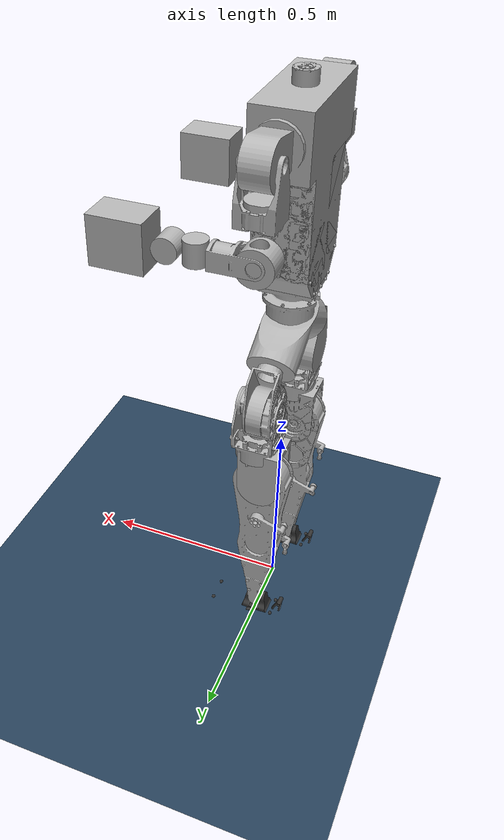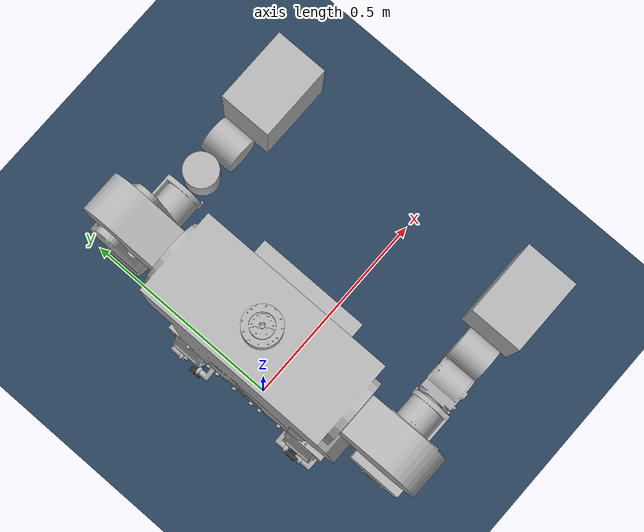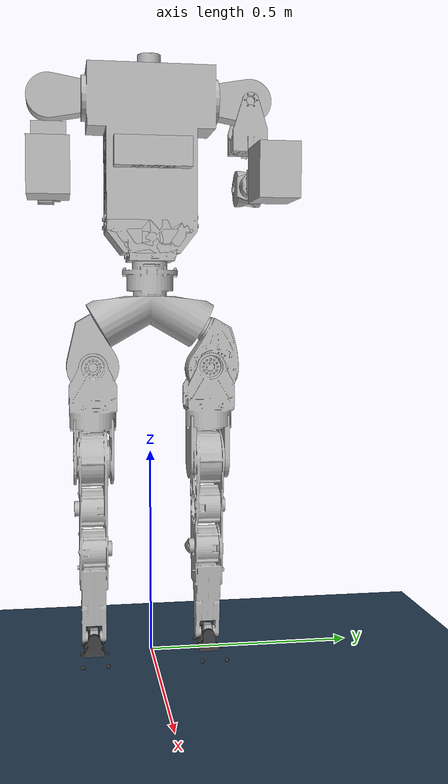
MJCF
<mujoco model="arm new 4">
  <compiler angle="radian" meshdir="../meshes"/>

  <default>
    <joint frictionloss="0.1"/>
  </default>

  <asset>
    <mesh name="pelvis_link.STL" file="pelvis_link.STL"/>
    <mesh name="waist_yaw_link.STL" file="waist_yaw_link.STL"/>
    <mesh name="waist_roll_link.STL" file="waist_roll_link.STL"/>
    <mesh name="torso_link.STL" file="torso_link.STL"/>
    <mesh name="right_shoulder_pitch_link.STL" file="right_shoulder_pitch_link.STL"/>
    <mesh name="right_shoulder_roll_link.STL" file="right_shoulder_roll_link.STL"/>
    <mesh name="right_shoulder_yaw_link.STL" file="right_shoulder_yaw_link.STL"/>
    <mesh name="right_elbow_link.STL" file="right_elbow_link.STL"/>
    <mesh name="right_wrist_roll_link.STL" file="right_wrist_roll_link.STL"/>
    <mesh name="right_wrist_yaw_link.STL" file="right_wrist_yaw_link.STL"/>
    <mesh name="right_wrist_pitch_link.STL" file="right_wrist_pitch_link.STL"/>
    <mesh name="left_shoulder_pitch_link.STL" file="left_shoulder_pitch_link.STL"/>
    <mesh name="left_shoulder_roll_link.STL" file="left_shoulder_roll_link.STL"/>
    <mesh name="left_shoulder_yaw_link.STL" file="left_shoulder_yaw_link.STL"/>
    <mesh name="left_elbow_link.STL" file="left_elbow_link.STL"/>
    <mesh name="left_wrist_roll_link.STL" file="left_wrist_roll_link.STL"/>
    <mesh name="left_wrist_yaw_link.STL" file="left_wrist_yaw_link.STL"/>
    <mesh name="left_wrist_pitch_link.STL" file="left_wrist_pitch_link.STL"/>
    <mesh name="right_hip_pitch_link.STL" file="right_hip_pitch_link.STL"/>
    <mesh name="right_hip_roll_link.STL" file="right_hip_roll_link.STL"/>
    <mesh name="right_hip_yaw_link.STL" file="right_hip_yaw_link.STL"/>
    <mesh name="right_knee_link.STL" file="right_knee_link.STL"/>
    <mesh name="right_ankle_pitch_link.STL" file="right_ankle_pitch_link.STL"/>
    <mesh name="right_ankle_roll_link.STL" file="right_ankle_roll_link.STL"/>
    <mesh name="left_hip_pitch_link.STL" file="left_hip_pitch_link.STL"/>
    <mesh name="left_hip_roll_link.STL" file="left_hip_roll_link.STL"/>
    <mesh name="left_hip_yaw_link.STL" file="left_hip_yaw_link.STL"/>
    <mesh name="left_knee_link.STL" file="left_knee_link.STL"/>
    <mesh name="left_ankle_pitch_link.STL" file="left_ankle_pitch_link.STL"/>
    <mesh name="left_ankle_roll_link.STL" file="left_ankle_roll_link.STL"/>
  </asset>

  <worldbody>
    <body name="pelvis_link" pos="0 0 0.8835">
      <inertial pos="0 0 0" mass="2.59612258544044" diaginertia="0.0187 0.0044 0.0193"/>
      <joint name="floating_base_joint" type="free" limited="false" actuatorfrclimited="false"/>
      <geom type="mesh" contype="0" conaffinity="0" group="1" density="0" rgba="0.7 0.7 0.7 1" mesh="pelvis_link.STL"/>
      <geom type="mesh" rgba="0.7 0.7 0.7 1" mesh="pelvis_link.STL"/>
      <site name="imu_in_pelvis" size="0.01" pos="0 0 0"/>
      <body name="waist_yaw_link" pos="0.0000 0.0000 0.0000" euler="0.0000 0.0000 0.0000">
        <joint name="waist_yaw_joint" pos="0 0 0" axis="0 0 1" range="-0.001 0.001" limited="true" actuatorfrcrange="-88 88" armature="0.01017752"/>
        <inertial pos="0 0 0" mass="1.34614103613669" diaginertia="0.0025 0.0025 0.0032"/>
        <geom type="mesh" contype="0" conaffinity="0" group="1" density="0" rgba="0.7 0.7 0.7 1" mesh="waist_yaw_link.STL"/>
        <geom type="mesh" rgba="0.7 0.7 0.7 1" mesh="waist_yaw_link.STL"/>
        <body name="waist_roll_link" pos="0.0000 0.0000 0.0960" euler="0.0000 0.0000 0.0000">
          <joint name="waist_roll_joint" pos="0 0 0" axis="-1 0 0" range="-0.001 0.001" limited="true" actuatorfrcrange="-50 50" armature="0.00721945"/>
          <inertial pos="0 0 0" mass="0.00904778684233861" diaginertia="1e-6 1e-6 1e-6"/>
          <geom type="mesh" contype="0" conaffinity="0" group="1" density="0" rgba="0.7 0.7 0.7 1" mesh="waist_roll_link.STL"/>
          <geom type="mesh" rgba="0.7 0.7 0.7 1" mesh="waist_roll_link.STL"/>
          <body name="torso_link" pos="0.0000 0.0000 0.0060" euler="0.0000 0.0000 0.0000">
            <joint name="torso_joint" pos="0 0 0" axis="0 0 1" range="-0.001 0.001" limited="true" actuatorfrcrange="-200 200" armature="0.01017752"/>
            <inertial pos="0 0 0" mass="15.0305076014071" diaginertia="0.3370 0.2728 0.1102"/>
            <geom type="mesh" contype="0" conaffinity="0" group="1" density="0" rgba="0.7 0.7 0.7 1" mesh="torso_link.STL"/>
            <geom type="mesh" rgba="0.7 0.7 0.7 1" mesh="torso_link.STL"/>
            <site name="imu_in_torso" size="0.01" pos="0 0 0.2"/>
            <body name="right_shoulder_pitch_link" pos="0.0000 -0.1653 0.3727" euler="0.0000 0.0000 0.0000">
              <joint name="right_shoulder_pitch_joint" pos="0 0 0" axis="0 1 0" range="-2 2" actuatorfrcrange="-40 40" armature="0.003609725"/>
              <inertial pos="0 0 0" mass="0.756178654371522" diaginertia="0.0015 0.0008 0.0012"/>
              <geom type="mesh" contype="0" conaffinity="0" group="1" density="0" rgba="0.7 0.7 0.7 1" mesh="right_shoulder_pitch_link.STL"/>
              <geom type="mesh" rgba="0.7 0.7 0.7 1" mesh="right_shoulder_pitch_link.STL"/>
              <body name="right_shoulder_roll_link" pos="0.0000 -0.0780 0.0000" euler="0.0000 0.0000 0.0000">
                <joint name="right_shoulder_roll_joint" pos="0 0 0" axis="1 0 0" range="-3.14 0" actuatorfrcrange="-40 40" armature="0.003609725"/>
                <inertial pos="0 0 0" mass="0.44352" diaginertia="0.0004 0.0004 0.0005"/>
                <geom type="mesh" contype="0" conaffinity="0" group="1" density="0" rgba="0.7 0.7 0.7 1" mesh="right_shoulder_roll_link.STL"/>
                <geom type="mesh" rgba="0.7 0.7 0.7 1" mesh="right_shoulder_roll_link.STL"/>
                <body name="right_shoulder_yaw_link" pos="0.0000 0.0000 -0.1230" euler="0.0000 0.0000 0.0000">
                  <joint name="right_shoulder_yaw_joint" pos="0 0 0" axis="0 0 1" range="-1.5 0.5" actuatorfrcrange="-20 20" armature="0.003609725"/>
                  <inertial pos="0 0 0" mass="0.254258436472472" diaginertia="0.0002 0.0003 0.0003"/>
                  <geom type="mesh" contype="0" conaffinity="0" group="1" density="0" rgba="0.7 0.7 0.7 1" mesh="right_shoulder_yaw_link.STL"/>
                  <geom type="mesh" rgba="0.7 0.7 0.7 1" mesh="right_shoulder_yaw_link.STL"/>
                  <body name="right_elbow_link" pos="0.0000 0.0000 -0.0870" euler="0.0000 0.0000 0.0000">
                    <joint name="right_elbow_joint" pos="0 0 0" axis="0 -1 0" range="-3 0" actuatorfrcrange="-20 20" armature="0.003609725"/>
                    <inertial pos="0 0 0" mass="0.1836" diaginertia="0.0001 0.0001 0.0001"/>
                    <geom type="mesh" contype="0" conaffinity="0" group="1" density="0" rgba="0.7 0.7 0.7 1" mesh="right_elbow_link.STL"/>
                    <geom type="mesh" rgba="0.7 0.7 0.7 1" mesh="right_elbow_link.STL"/>
                    <body name="right_wrist_roll_link" pos="0.1025 0.0000 0.0000" euler="0.0000 0.0000 0.0000">
                      <joint name="right_wrist_roll_joint" pos="0 0 0" axis="-1 0 0" range="-1 1" actuatorfrcrange="-10 10" armature="0.003609725"/>
                      <inertial pos="0 0 0" mass="0.145450242074064" diaginertia="0.0001 0.0001 0.0001"/>
                      <geom type="mesh" contype="0" conaffinity="0" group="1" density="0" rgba="0.7 0.7 0.7 1" mesh="right_wrist_roll_link.STL"/>
                      <geom type="mesh" rgba="0.7 0.7 0.7 1" mesh="right_wrist_roll_link.STL"/>
                      <body name="right_wrist_yaw_link" pos="0.0355 0.0000 0.0000" euler="0.0000 0.0000 0.0000">
                        <joint name="right_wrist_yaw_joint" pos="0 0 0" axis="0 0 -1" range="-1 1" actuatorfrcrange="-10 10" armature="0.00425"/>
                        <inertial pos="0 0 0" mass="0.161163703129156" diaginertia="0.0001 0.0001 0.0001"/>
                        <geom type="mesh" contype="0" conaffinity="0" group="1" density="0" rgba="0.7 0.7 0.7 1" mesh="right_wrist_yaw_link.STL"/>
                        <geom type="mesh" rgba="0.7 0.7 0.7 1" mesh="right_wrist_yaw_link.STL"/>
                        <body name="right_wrist_pitch_link" pos="0.0600 0.0000 0.0000" euler="0.0000 0.0000 0.0000">
                          <joint name="right_wrist_pitch_joint" pos="0 0 0" axis="0 1 0" range="-0.5 0.5" actuatorfrcrange="-10 10" armature="0.00425"/>
                          <inertial pos="0 0 0" mass="1.404" diaginertia="0.0026 0.0037 0.0029"/>
                          <geom type="mesh" contype="0" conaffinity="0" group="1" density="0" rgba="0.7 0.7 0.7 1" mesh="right_wrist_pitch_link.STL"/>
                          <geom type="mesh" rgba="0.7 0.7 0.7 1" mesh="right_wrist_pitch_link.STL"/>
                        </body>
                      </body>
                    </body>
                  </body>
                </body>
              </body>
            </body>
            <body name="left_shoulder_pitch_link" pos="0.0000 0.1653 0.3727" euler="0.0000 0.0000 0.0000">
              <joint name="left_shoulder_pitch_joint" pos="0 0 0" axis="0 1 0" range="-2 2" actuatorfrcrange="-40 40" armature="0.003609725"/>
              <inertial pos="0 0 0" mass="0.756178654371521" diaginertia="0.0015 0.0008 0.0012"/>
              <geom type="mesh" contype="0" conaffinity="0" group="1" density="0" rgba="0.7 0.7 0.7 1" mesh="left_shoulder_pitch_link.STL"/>
              <geom type="mesh" rgba="0.7 0.7 0.7 1" mesh="left_shoulder_pitch_link.STL"/>
              <body name="left_shoulder_roll_link" pos="0.0000 0.0780 0.0000" euler="0.0000 0.0000 0.0000">
                <joint name="left_shoulder_roll_joint" pos="0 0 0" axis="1 0 0" range="0 3.14" actuatorfrcrange="-40 40" armature="0.003609725"/>
                <inertial pos="0 0 0" mass="0.443520000000001" diaginertia="0.0004 0.0004 0.0005"/>
                <geom type="mesh" contype="0" conaffinity="0" group="1" density="0" rgba="0.7 0.7 0.7 1" mesh="left_shoulder_roll_link.STL"/>
                <geom type="mesh" rgba="0.7 0.7 0.7 1" mesh="left_shoulder_roll_link.STL"/>
                <body name="left_shoulder_yaw_link" pos="0.0000 0.0000 -0.1230" euler="0.0000 0.0000 0.0000">
                  <joint name="left_shoulder_yaw_joint" pos="0 0 0" axis="0 0 1" range="-0.5 1.5" actuatorfrcrange="-20 20" armature="0.003609725"/>
                  <inertial pos="0 0 0" mass="0.254258436472472" diaginertia="0.0002 0.0003 0.0003"/>
                  <geom type="mesh" contype="0" conaffinity="0" group="1" density="0" rgba="0.7 0.7 0.7 1" mesh="left_shoulder_yaw_link.STL"/>
                  <geom type="mesh" rgba="0.7 0.7 0.7 1" mesh="left_shoulder_yaw_link.STL"/>
                  <body name="left_elbow_link" pos="0.0000 0.0000 -0.0870" euler="0.0000 0.0000 0.0000">
                    <joint name="left_elbow_joint" pos="0 0 0" axis="0 -1 0" range="-3 0" actuatorfrcrange="-20 20" armature="0.003609725"/>
                    <inertial pos="0 0 0" mass="0.1836" diaginertia="0.0001 0.0001 0.0001"/>
                    <geom type="mesh" contype="0" conaffinity="0" group="1" density="0" rgba="0.7 0.7 0.7 1" mesh="left_elbow_link.STL"/>
                    <geom type="mesh" rgba="0.7 0.7 0.7 1" mesh="left_elbow_link.STL"/>
                    <body name="left_wrist_roll_link" pos="0.1025 0.0000 0.0000" euler="0.0000 0.0000 0.0000">
                      <joint name="left_wrist_roll_joint" pos="0 0 0" axis="-1 0 0" range="-1 1" actuatorfrcrange="-10 10" armature="0.003609725"/>
                      <inertial pos="0 0 0" mass="0.145450242074064" diaginertia="0.0001 0.0001 0.0001"/>
                      <geom type="mesh" contype="0" conaffinity="0" group="1" density="0" rgba="0.7 0.7 0.7 1" mesh="left_wrist_roll_link.STL"/>
                      <geom type="mesh" rgba="0.7 0.7 0.7 1" mesh="left_wrist_roll_link.STL"/>
                      <body name="left_wrist_yaw_link" pos="0.0355 0.0000 0.0000" euler="0.0000 0.0000 0.0000">
                        <joint name="left_wrist_yaw_joint" pos="0 0 0" axis="0 0 -1" range="-1 1" actuatorfrcrange="-10 10" armature="0.00425"/>
                        <inertial pos="0 0 0" mass="0.161163703129156" diaginertia="0.0001 0.0001 0.0001"/>
                        <geom type="mesh" contype="0" conaffinity="0" group="1" density="0" rgba="0.7 0.7 0.7 1" mesh="left_wrist_yaw_link.STL"/>
                        <geom type="mesh" rgba="0.7 0.7 0.7 1" mesh="left_wrist_yaw_link.STL"/>
                        <body name="left_wrist_pitch_link" pos="0.0600 0.0000 0.0000" euler="0.0000 0.0000 0.0000">
                          <joint name="left_wrist_pitch_joint" pos="0 0 0" axis="0 1 0" range="-0.5 0.5" actuatorfrcrange="-10 10" armature="0.00425"/>
                          <inertial pos="0 0 0" mass="1.404" diaginertia="0.0026 0.0037 0.0029"/>
                          <geom type="mesh" contype="0" conaffinity="0" group="1" density="0" rgba="0.7 0.7 0.7 1" mesh="left_wrist_pitch_link.STL"/>
                          <geom type="mesh" rgba="0.7 0.7 0.7 1" mesh="left_wrist_pitch_link.STL"/>
                        </body>
                      </body>
                    </body>
                  </body>
                </body>
              </body>
            </body>
          </body>
        </body>
      </body>
      <body name="right_hip_pitch_link" pos="0.0000 -0.1272 -0.0734" euler="0.5236 0.0000 0.0000">
        <joint name="right_hip_pitch_joint" pos="0 0 0" axis="0 1 0" range="-1 1" actuatorfrcrange="-88 88" armature="0.01017752"/>
        <inertial pos="0 0 0" mass="1.48627427894323" diaginertia="0.0044 0.0039 0.0025"/>
        <geom type="mesh" contype="0" conaffinity="0" group="1" density="0" rgba="0.7 0.7 0.7 1" mesh="right_hip_pitch_link.STL"/>
        <geom type="mesh" rgba="0.7 0.7 0.7 1" mesh="right_hip_pitch_link.STL"/>
        <body name="right_hip_roll_link" pos="0.0450 -0.0628 -0.0779" euler="-0.5236 0.0000 0.0000">
          <joint name="right_hip_roll_joint" pos="0 0 0" axis="1 0 0" range="-0.5 1" actuatorfrcrange="-139 139" armature="0.025101925"/>
          <inertial pos="0 0 0" mass="0.657909596250466" diaginertia="0.0017 0.0019 0.0014"/>
          <geom type="mesh" contype="0" conaffinity="0" group="1" density="0" rgba="0.7 0.7 0.7 1" mesh="right_hip_roll_link.STL"/>
          <geom type="mesh" rgba="0.7 0.7 0.7 1" mesh="right_hip_roll_link.STL"/>
          <body name="right_hip_yaw_link" pos="-0.0450 0.0000 -0.1150" euler="0.0000 0.0000 0.0000">
            <joint name="right_hip_yaw_joint" pos="0 0 0" axis="0 0 -1" range="-0.5 0.5" actuatorfrcrange="-88 88" armature="0.01017752"/>
            <inertial pos="0 0 0" mass="0.558150874810085" diaginertia="0.0021 0.0018 0.0013"/>
            <geom type="mesh" contype="0" conaffinity="0" group="1" density="0" rgba="0.7 0.7 0.7 1" mesh="right_hip_yaw_link.STL"/>
            <geom type="mesh" rgba="0.7 0.7 0.7 1" mesh="right_hip_yaw_link.STL"/>
            <body name="right_knee_link" pos="0.0000 -0.0350 -0.1137" euler="0.0000 0.0000 0.0000">
              <joint name="right_knee_joint" pos="0 0 0" axis="0 1 0" range="-0.5 1" actuatorfrcrange="-139 139" armature="0.025101925"/>
              <inertial pos="0 0 0" mass="3.1242416304843" diaginertia="0.0534 0.0551 0.0042"/>
              <geom type="mesh" contype="0" conaffinity="0" group="1" density="0" rgba="0.7 0.7 0.7 1" mesh="right_knee_link.STL"/>
              <geom type="mesh" rgba="0.7 0.7 0.7 1" mesh="right_knee_link.STL"/>
              <body name="right_ankle_pitch_link" pos="0.0000 0.0350 -0.4335" euler="0.0000 0.0000 0.0000">
                <joint name="right_ankle_pitch_joint" pos="0 0 0" axis="0 1 0" range="-0.5 0.5" actuatorfrcrange="-50 50" armature="0.00721945"/>
                <inertial pos="0 0 0" mass="0.012" diaginertia="1e-6 1e-6 1e-6"/>
                <geom type="mesh" contype="0" conaffinity="0" group="1" density="0" rgba="0.7 0.7 0.7 1" mesh="right_ankle_pitch_link.STL"/>
                <geom type="mesh" rgba="0.7 0.7 0.7 1" mesh="right_ankle_pitch_link.STL"/>
                <body name="right_ankle_roll_link" pos="0.0000 0.0000 -0.0150" euler="0.0000 0.0000 0.0000">
                  <joint name="right_ankle_roll_joint" pos="0 0 0" axis="1 0 0" range="-0.5 0.5" actuatorfrcrange="-50 50" armature="0.00721945"/>
                  <inertial pos="0 0 0" mass="0.2058" diaginertia="0.0001 0.0008 0.0008"/>
                  <geom type="mesh" contype="0" conaffinity="0" group="1" density="0" rgba="0.2 0.2 0.2 1" mesh="right_ankle_roll_link.STL"/>
                  <geom size="0.005" pos="-0.05 0.025 -0.03" rgba="0.2 0.2 0.2 1"/>
                  <geom size="0.005" pos="-0.05 -0.025 -0.03" rgba="0.2 0.2 0.2 1"/>
                  <geom size="0.005" pos="0.12 0.03 -0.03" rgba="0.2 0.2 0.2 1"/>
                  <geom size="0.005" pos="0.12 -0.03 -0.03" rgba="0.2 0.2 0.2 1"/>
                </body>
              </body>
            </body>
          </body>
        </body>
      </body>
      <body name="left_hip_pitch_link" pos="0.0000 0.1272 -0.0734" euler="-0.5236 0.0000 0.0000">
        <joint name="left_hip_pitch_joint" pos="0 0 0" axis="0 1 0" range="-1 1" actuatorfrcrange="-88 88" armature="0.01017752"/>
        <inertial pos="0 0 0" mass="1.48627427894323" diaginertia="0.0044 0.0039 0.0025"/>
        <geom type="mesh" contype="0" conaffinity="0" group="1" density="0" rgba="0.7 0.7 0.7 1" mesh="left_hip_pitch_link.STL"/>
        <geom type="mesh" rgba="0.7 0.7 0.7 1" mesh="left_hip_pitch_link.STL"/>
        <body name="left_hip_roll_link" pos="0.0450 0.0628 -0.0779" euler="0.5236 0.0000 0.0000">
          <joint name="left_hip_roll_joint" pos="0 0 0" axis="1 0 0" range="-0.5 1" actuatorfrcrange="-139 139" armature="0.025101925"/>
          <inertial pos="0 0 0" mass="0.657909596250466" diaginertia="0.0017 0.0019 0.0014"/>
          <geom type="mesh" contype="0" conaffinity="0" group="1" density="0" rgba="0.7 0.7 0.7 1" mesh="left_hip_roll_link.STL"/>
          <geom type="mesh" rgba="0.7 0.7 0.7 1" mesh="left_hip_roll_link.STL"/>
          <body name="left_hip_yaw_link" pos="-0.0450 0.0000 -0.1150" euler="0.0000 0.0000 0.0000">
            <joint name="left_hip_yaw_joint" pos="0 0 0" axis="0 0 -1" range="-0.5 0.5" actuatorfrcrange="-88 88" armature="0.01017752"/>
            <inertial pos="0 0 0" mass="0.558150874810084" diaginertia="0.0021 0.0018 0.0013"/>
            <geom type="mesh" contype="0" conaffinity="0" group="1" density="0" rgba="0.7 0.7 0.7 1" mesh="left_hip_yaw_link.STL"/>
            <geom type="mesh" rgba="0.7 0.7 0.7 1" mesh="left_hip_yaw_link.STL"/>
            <body name="left_knee_link" pos="0.0000 0.0350 -0.1137" euler="0.0000 0.0000 0.0000">
              <joint name="left_knee_joint" pos="0 0 0" axis="0 1 0" range="-0.5 1" actuatorfrcrange="-139 139" armature="0.025101925"/>
              <inertial pos="0 0 0" mass="3.1244862763748" diaginertia="0.0535 0.0551 0.0042"/>
              <geom type="mesh" contype="0" conaffinity="0" group="1" density="0" rgba="0.7 0.7 0.7 1" mesh="left_knee_link.STL"/>
              <geom type="mesh" rgba="0.7 0.7 0.7 1" mesh="left_knee_link.STL"/>
              <body name="left_ankle_pitch_link" pos="0.0000 -0.0350 -0.4335" euler="0.0000 0.0000 0.0000">
                <joint name="left_ankle_pitch_joint" pos="0 0 0" axis="0 1 0" range="-0.5 0.5" actuatorfrcrange="-50 50" armature="0.00721945"/>
                <inertial pos="0 0 0" mass="0.012" diaginertia="1e-6 1e-6 1e-6"/>
                <geom type="mesh" contype="0" conaffinity="0" group="1" density="0" rgba="0.7 0.7 0.7 1" mesh="left_ankle_pitch_link.STL"/>
                <geom type="mesh" rgba="0.7 0.7 0.7 1" mesh="left_ankle_pitch_link.STL"/>
                <body name="left_ankle_roll_link" pos="0.0000 0.0000 -0.0150" euler="0.0000 0.0000 0.0000">
                  <joint name="left_ankle_roll_joint" pos="0 0 0" axis="1 0 0" range="-0.5 0.5" actuatorfrcrange="-50 50" armature="0.00721945"/>
                  <inertial pos="0 0 0" mass="0.2058" diaginertia="0.0001 0.0008 0.0008"/>
                  <geom type="mesh" contype="0" conaffinity="0" group="1" density="0" rgba="0.2 0.2 0.2 1" mesh="left_ankle_roll_link.STL"/>
                  <geom size="0.005" pos="-0.05 0.025 -0.03" rgba="0.2 0.2 0.2 1"/>
                  <geom size="0.005" pos="-0.05 -0.025 -0.03" rgba="0.2 0.2 0.2 1"/>
                  <geom size="0.005" pos="0.12 0.03 -0.03" rgba="0.2 0.2 0.2 1"/>
                  <geom size="0.005" pos="0.12 -0.03 -0.03" rgba="0.2 0.2 0.2 1"/>
                </body>
              </body>
            </body>
          </body>
        </body>
      </body>
    </body>
  </worldbody>

  <actuator>
    <motor name="waist_yaw_joint" joint="waist_yaw_joint"/>
    <motor name="waist_roll_joint" joint="waist_roll_joint"/>
    <motor name="torso_joint" joint="torso_joint"/>
    <motor name="right_shoulder_pitch_joint" joint="right_shoulder_pitch_joint"/>
    <motor name="right_shoulder_roll_joint" joint="right_shoulder_roll_joint"/>
    <motor name="right_shoulder_yaw_joint" joint="right_shoulder_yaw_joint"/>
    <motor name="right_elbow_joint" joint="right_elbow_joint"/>
    <motor name="right_wrist_roll_joint" joint="right_wrist_roll_joint"/>
    <motor name="right_wrist_yaw_joint" joint="right_wrist_yaw_joint"/>
    <motor name="right_wrist_pitch_joint" joint="right_wrist_pitch_joint"/>
    <motor name="left_shoulder_pitch_joint" joint="left_shoulder_pitch_joint"/>
    <motor name="left_shoulder_roll_joint" joint="left_shoulder_roll_joint"/>
    <motor name="left_shoulder_yaw_joint" joint="left_shoulder_yaw_joint"/>
    <motor name="left_elbow_joint" joint="left_elbow_joint"/>
    <motor name="left_wrist_roll_joint" joint="left_wrist_roll_joint"/>
    <motor name="left_wrist_yaw_joint" joint="left_wrist_yaw_joint"/>
    <motor name="left_wrist_pitch_joint" joint="left_wrist_pitch_joint"/>
    <motor name="right_hip_pitch_joint" joint="right_hip_pitch_joint"/>
    <motor name="right_hip_roll_joint" joint="right_hip_roll_joint"/>
    <motor name="right_hip_yaw_joint" joint="right_hip_yaw_joint"/>
    <motor name="right_knee_joint" joint="right_knee_joint"/>
    <motor name="right_ankle_pitch_joint" joint="right_ankle_pitch_joint"/>
    <motor name="right_ankle_roll_joint" joint="right_ankle_roll_joint"/>
    <motor name="left_hip_pitch_joint" joint="left_hip_pitch_joint"/>
    <motor name="left_hip_roll_joint" joint="left_hip_roll_joint"/>
    <motor name="left_hip_yaw_joint" joint="left_hip_yaw_joint"/>
    <motor name="left_knee_joint" joint="left_knee_joint"/>
    <motor name="left_ankle_pitch_joint" joint="left_ankle_pitch_joint"/>
    <motor name="left_ankle_roll_joint" joint="left_ankle_roll_joint"/>
  </actuator>

  <keyframe>
    <!-- home pose: pos (0, 0, 0.74), quat (1, 0, 0, 0), joints from ARM_NEW_4_CFG -->
    <key name="home"
    qpos=
    "0 0 0.74
    1 0 0 0
    0 0 0
    0.3 -0.2 0 -0.3 0 0 0
    0.3 0.2 0 -0.3 0 0 0
    -0.212 0 0 0.212 -0.070 0
    -0.212 0 0 0.212 -0.070 0"/>
  </keyframe>

  <!-- setup scene -->
  <statistic center="1.0 0.7 1.0" extent="0.8"/>
  <visual>
    <headlight diffuse="0.6 0.6 0.6" ambient="0.1 0.1 0.1" specular="0.9 0.9 0.9"/>
    <rgba haze="0.15 0.25 0.35 1"/>
    <global azimuth="-140" elevation="-20"/>
  </visual>

  <default>
    <joint frictionloss="0.1"/>
  </default>

  <asset>
    <texture type="skybox" builtin="flat" rgb1="0 0 0" rgb2="0 0 0" width="512" height="3072"/>
    <texture type="2d" name="groundplane" builtin="checker" mark="edge" rgb1="0.2 0.3 0.4" rgb2="0.1 0.2 0.3" markrgb="0.8 0.8 0.8" width="300" height="300"/>
    <material name="groundplane" texture="groundplane" texuniform="true" texrepeat="5 5" reflectance="0.2"/>
  </asset>

  <worldbody>
    <light pos="1 0 3.5" dir="0 0 -1" directional="true"/>
    <geom name="floor" size="0 0 0.05" type="plane" material="groundplane"/>
  </worldbody>
</mujoco>
